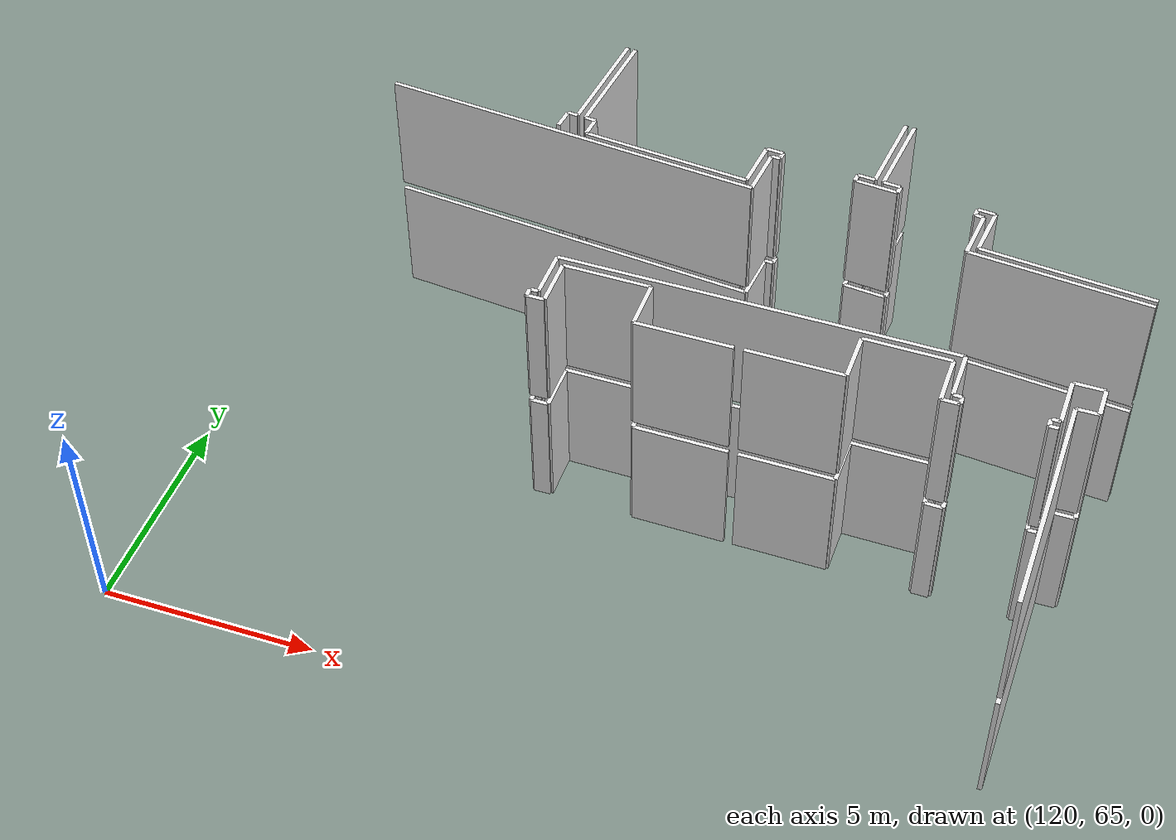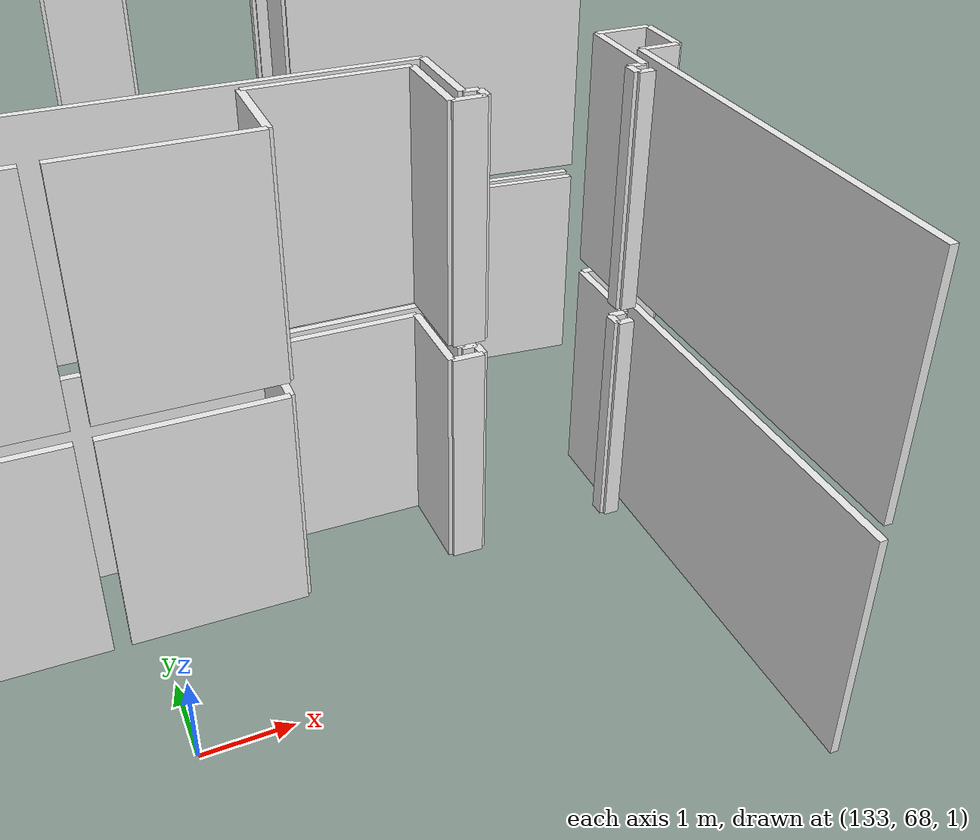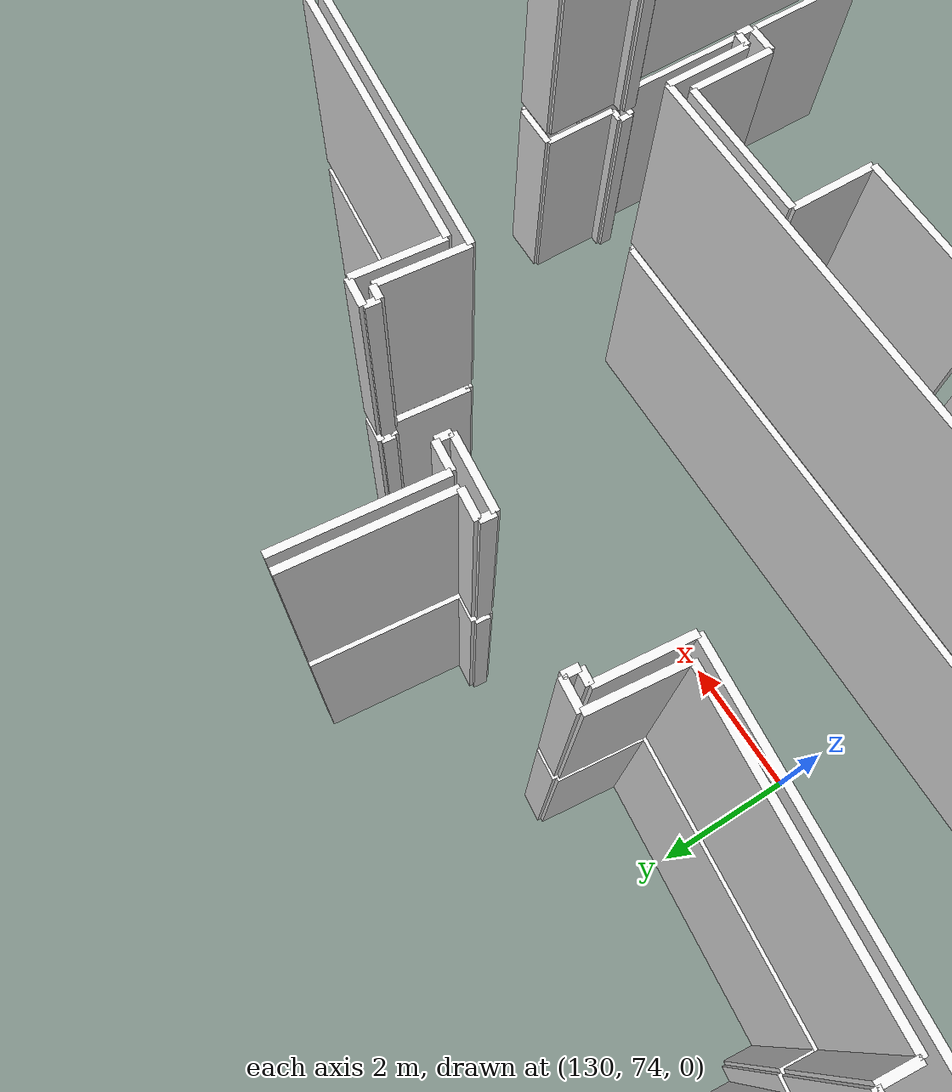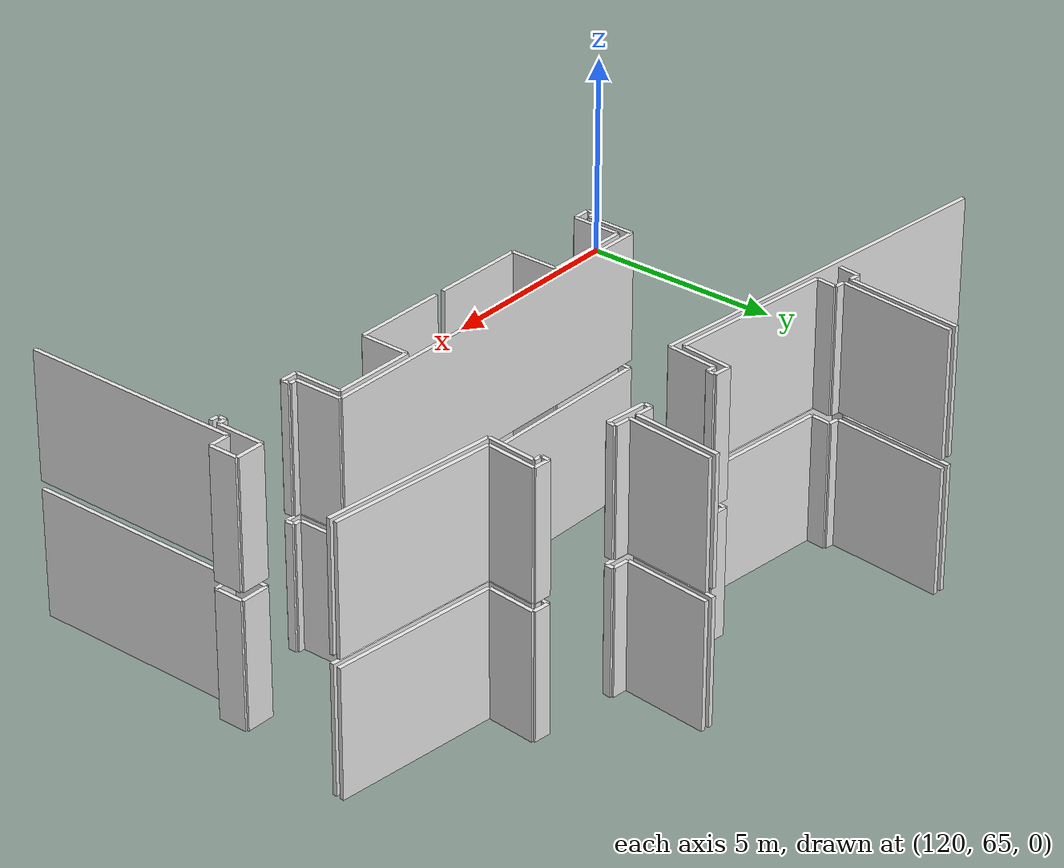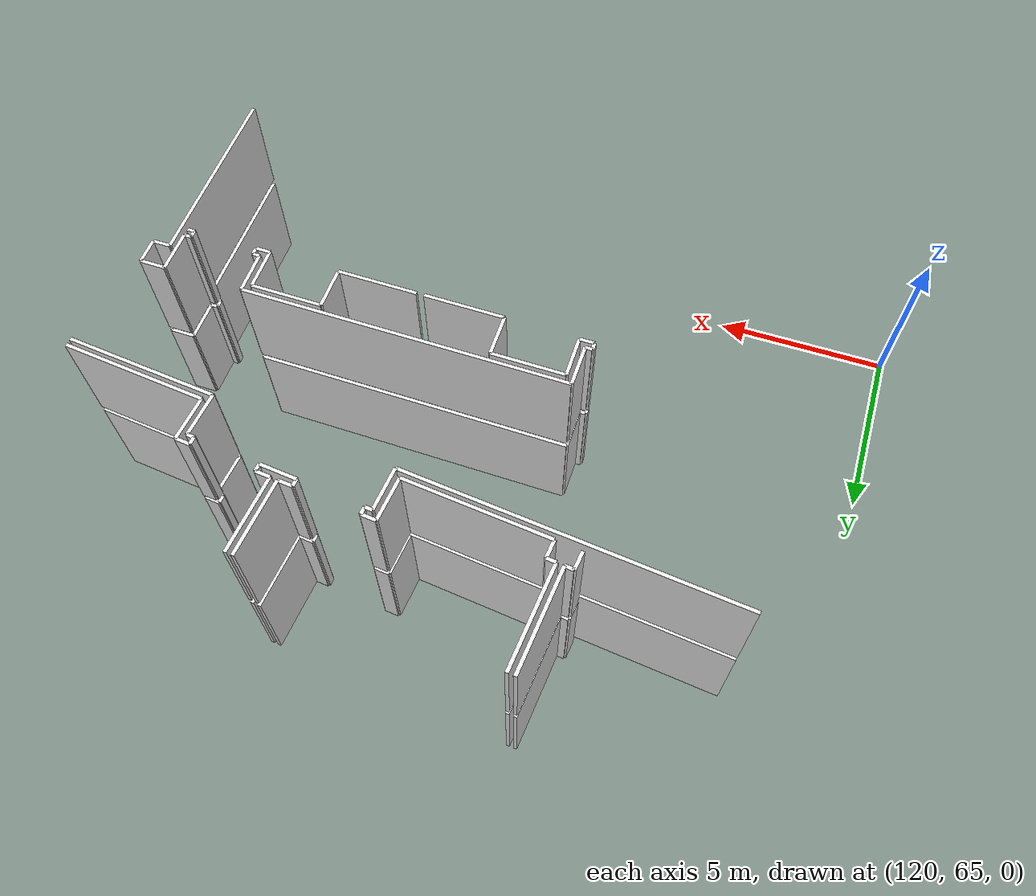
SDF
<sdf version="1.6">
 <world name="default">
  <model name="wall_134.4_76.9_0.0_link">
   <static>true</static>
   <pose>134.39999999999418 76.89999999990687 1.5 0 0 3.0419240009977764</pose>
   <link name="link">
    <visual name="visual">
     <geometry><box><size>0.4019950248137912 0.1 3</size></box></geometry>
     <material>
      <script><uri>file://media/materials/scripts/gazebo.material</uri><name>Gazebo/White</name></script>
     </material>
    </visual>
   </link>
  </model>
  <model name="wall_134.3_78.0_0.0_link">
   <static>true</static>
   <pose>134.30499999999302 77.95999999996275 1.5 0 0 1.4701757469590804</pose>
   <link name="link">
    <visual name="visual">
     <geometry><box><size>2.090574083904777 0.1 3</size></box></geometry>
     <material>
      <script><uri>file://media/materials/scripts/gazebo.material</uri><name>Gazebo/White</name></script>
     </material>
    </visual>
   </link>
  </model>
  <model name="wall_138.6_75.3_0.0_link">
   <static>true</static>
   <pose>138.63999999998487 75.26000000000931 1.5 0 0 3.0404164645756886</pose>
   <link name="link">
    <visual name="visual">
     <geometry><box><size>3.9602525171943066 0.1 3</size></box></geometry>
     <material>
      <script><uri>file://media/materials/scripts/gazebo.material</uri><name>Gazebo/White</name></script>
     </material>
    </visual>
   </link>
  </model>
  <model name="wall_136.7_76.1_0.0_link">
   <static>true</static>
   <pose>136.72999999998137 76.06000000005588 1.5 0 0 1.4711276743229451</pose>
   <link name="link">
    <visual name="visual">
     <geometry><box><size>1.2059850747193837 0.1 3</size></box></geometry>
     <material>
      <script><uri>file://media/materials/scripts/gazebo.material</uri><name>Gazebo/White</name></script>
     </material>
    </visual>
   </link>
  </model>
  <model name="wall_136.6_76.7_0.0_link">
   <static>true</static>
   <pose>136.5899999999965 76.68000000016764 1.5 0 0 3.0419240009977764</pose>
   <link name="link">
    <visual name="visual">
     <geometry><box><size>0.4019950248137912 0.1 3</size></box></geometry>
     <material>
      <script><uri>file://media/materials/scripts/gazebo.material</uri><name>Gazebo/White</name></script>
     </material>
    </visual>
   </link>
  </model>
  <model name="wall_133.8_77.0_0.0_link">
   <static>true</static>
   <pose>133.79999999998836 76.95999999996275 1.5 0 0 -0.09966865257760905</pose>
   <link name="link">
    <visual name="visual">
     <geometry><box><size>0.40199502487170996 0.1 3</size></box></geometry>
     <material>
      <script><uri>file://media/materials/scripts/gazebo.material</uri><name>Gazebo/White</name></script>
     </material>
    </visual>
   </link>
  </model>
  <model name="wall_134.1_78.0_0.0_link">
   <static>true</static>
   <pose>134.10500000001048 77.97999999998137 1.5 0 0 1.4701757469313783</pose>
   <link name="link">
    <visual name="visual">
     <geometry><box><size>2.0905740839106244 0.1 3</size></box></geometry>
     <material>
      <script><uri>file://media/materials/scripts/gazebo.material</uri><name>Gazebo/White</name></script>
     </material>
    </visual>
   </link>
  </model>
  <model name="wall_127.3_78.3_0.0_link">
   <static>true</static>
   <pose>127.29000000000815 78.31000000005588 1.5 0 0 -1.6711772298577363</pose>
   <link name="link">
    <visual name="visual">
     <geometry><box><size>2.7940651390819315 0.1 3</size></box></geometry>
     <material>
      <script><uri>file://media/materials/scripts/gazebo.material</uri><name>Gazebo/White</name></script>
     </material>
    </visual>
   </link>
  </model>
  <model name="wall_127.3_76.9_0.0_link">
   <static>true</static>
   <pose>127.27500000002328 76.90500000002794 1.5 0 0 -0.11942892521040878</pose>
   <link name="link">
    <visual name="visual">
     <geometry><box><size>0.2517935662158716 0.1 3</size></box></geometry>
     <material>
      <script><uri>file://media/materials/scripts/gazebo.material</uri><name>Gazebo/White</name></script>
     </material>
    </visual>
   </link>
  </model>
  <model name="wall_127.4_76.6_0.0_link">
   <static>true</static>
   <pose>127.375 76.64500000001863 1.5 0 0 -1.6724851786059602</pose>
   <link name="link">
    <visual name="visual">
     <geometry><box><size>0.4925444144680799 0.1 3</size></box></geometry>
     <material>
      <script><uri>file://media/materials/scripts/gazebo.material</uri><name>Gazebo/White</name></script>
     </material>
    </visual>
   </link>
  </model>
  <model name="wall_129.3_76.2_0.0_link">
   <static>true</static>
   <pose>129.31500000000233 76.19999999995343 1.5 0 0 -0.10143187482049365</pose>
   <link name="link">
    <visual name="visual">
     <geometry><box><size>3.9503037858281362 0.1 3</size></box></geometry>
     <material>
      <script><uri>file://media/materials/scripts/gazebo.material</uri><name>Gazebo/White</name></script>
     </material>
    </visual>
   </link>
  </model>
  <model name="wall_131.3_76.6_0.0_link">
   <static>true</static>
   <pose>131.34500000000116 76.60000000009313 1.5 0 0 1.4628838380389488</pose>
   <link name="link">
    <visual name="visual">
     <geometry><box><size>1.2070211267550837 0.1 3</size></box></geometry>
     <material>
      <script><uri>file://media/materials/scripts/gazebo.material</uri><name>Gazebo/White</name></script>
     </material>
    </visual>
   </link>
  </model>
  <model name="wall_131.6_77.2_0.0_link">
   <static>true</static>
   <pose>131.60999999998603 77.18000000016764 1.5 0 0 -0.09966865257760905</pose>
   <link name="link">
    <visual name="visual">
     <geometry><box><size>0.40199502487170996 0.1 3</size></box></geometry>
     <material>
      <script><uri>file://media/materials/scripts/gazebo.material</uri><name>Gazebo/White</name></script>
     </material>
    </visual>
   </link>
  </model>
  <model name="wall_126.7_76.7_0.0_link">
   <static>true</static>
   <pose>126.68000000002212 76.72000000020489 1.5 0 0 1.4513674007811488</pose>
   <link name="link">
    <visual name="visual">
     <geometry><box><size>0.5035871324802894 0.1 3</size></box></geometry>
     <material>
      <script><uri>file://media/materials/scripts/gazebo.material</uri><name>Gazebo/White</name></script>
     </material>
    </visual>
   </link>
  </model>
  <model name="wall_126.8_77.0_0.0_link">
   <static>true</static>
   <pose>126.8300000000163 76.9550000000745 1.5 0 0 -0.1243549956213644</pose>
   <link name="link">
    <visual name="visual">
     <geometry><box><size>0.24186773247205975 0.1 3</size></box></geometry>
     <material>
      <script><uri>file://media/materials/scripts/gazebo.material</uri><name>Gazebo/White</name></script>
     </material>
    </visual>
   </link>
  </model>
  <model name="wall_127.1_78.3_0.0_link">
   <static>true</static>
   <pose>127.08999999999651 78.3300000000745 1.5 0 0 1.470415423732057</pose>
   <link name="link">
    <visual name="visual">
     <geometry><box><size>2.7940651390819315 0.1 3</size></box></geometry>
     <material>
      <script><uri>file://media/materials/scripts/gazebo.material</uri><name>Gazebo/White</name></script>
     </material>
    </visual>
   </link>
  </model>
  <model name="wall_138.5_75.1_0.0_link">
   <static>true</static>
   <pose>138.52000000001863 75.07499999995343 1.5 0 0 3.0428807098041264</pose>
   <link name="link">
    <visual name="visual">
     <geometry><box><size>4.1602523961721385 0.1 3</size></box></geometry>
     <material>
      <script><uri>file://media/materials/scripts/gazebo.material</uri><name>Gazebo/White</name></script>
     </material>
    </visual>
   </link>
  </model>
  <model name="wall_136.5_75.9_0.0_link">
   <static>true</static>
   <pose>136.5100000000093 75.87999999988824 1.5 0 0 1.4711276743229451</pose>
   <link name="link">
    <visual name="visual">
     <geometry><box><size>1.2059850747193837 0.1 3</size></box></geometry>
     <material>
      <script><uri>file://media/materials/scripts/gazebo.material</uri><name>Gazebo/White</name></script>
     </material>
    </visual>
   </link>
  </model>
  <model name="wall_136.5_76.5_0.0_link">
   <static>true</static>
   <pose>136.47000000000116 76.48999999999069 1.5 0 0 3.0419240010121844</pose>
   <link name="link">
    <visual name="visual">
     <geometry><box><size>0.20099751243585498 0.1 3</size></box></geometry>
     <material>
      <script><uri>file://media/materials/scripts/gazebo.material</uri><name>Gazebo/White</name></script>
     </material>
    </visual>
   </link>
  </model>
  <model name="wall_136.4_76.6_0.0_link">
   <static>true</static>
   <pose>136.38000000000466 76.60000000009313 1.5 0 0 1.4711276743037347</pose>
   <link name="link">
    <visual name="visual">
     <geometry><box><size>0.20099751260961132 0.1 3</size></box></geometry>
     <material>
      <script><uri>file://media/materials/scripts/gazebo.material</uri><name>Gazebo/White</name></script>
     </material>
    </visual>
   </link>
  </model>
  <model name="wall_134.6_76.8_0.0_link">
   <static>true</static>
   <pose>134.5899999999965 76.78000000002794 1.5 0 0 -1.6704649792284274</pose>
   <link name="link">
    <visual name="visual">
     <geometry><box><size>0.20099751214046915 0.1 3</size></box></geometry>
     <material>
      <script><uri>file://media/materials/scripts/gazebo.material</uri><name>Gazebo/White</name></script>
     </material>
    </visual>
   </link>
  </model>
  <model name="wall_134.1_76.7_0.0_link">
   <static>true</static>
   <pose>134.0800000000163 76.72999999998137 1.5 0 0 3.0419240014674718</pose>
   <link name="link">
    <visual name="visual">
     <geometry><box><size>1.004987562075021 0.1 3</size></box></geometry>
     <material>
      <script><uri>file://media/materials/scripts/gazebo.material</uri><name>Gazebo/White</name></script>
     </material>
    </visual>
   </link>
  </model>
  <model name="wall_133.6_76.9_0.0_link">
   <static>true</static>
   <pose>133.5899999999965 76.87999999988824 1.5 0 0 1.4711276745918913</pose>
   <link name="link">
    <visual name="visual">
     <geometry><box><size>0.20099751260381943 0.1 3</size></box></geometry>
     <material>
      <script><uri>file://media/materials/scripts/gazebo.material</uri><name>Gazebo/White</name></script>
     </material>
    </visual>
   </link>
  </model>
  <model name="wall_131.8_77.1_0.0_link">
   <static>true</static>
   <pose>131.79999999998836 77.06000000005588 1.5 0 0 -1.6704649792860586</pose>
   <link name="link">
    <visual name="visual">
     <geometry><box><size>0.20099751260961132 0.1 3</size></box></geometry>
     <material>
      <script><uri>file://media/materials/scripts/gazebo.material</uri><name>Gazebo/White</name></script>
     </material>
    </visual>
   </link>
  </model>
  <model name="wall_131.7_77.0_0.0_link">
   <static>true</static>
   <pose>131.69000000000233 76.96999999997206 1.5 0 0 3.0419240009833683</pose>
   <link name="link">
    <visual name="visual">
     <geometry><box><size>0.20099751237793617 0.1 3</size></box></geometry>
     <material>
      <script><uri>file://media/materials/scripts/gazebo.material</uri><name>Gazebo/White</name></script>
     </material>
    </visual>
   </link>
  </model>
  <model name="wall_131.5_76.4_0.0_link">
   <static>true</static>
   <pose>131.52999999999884 76.38500000000931 1.5 0 0 -1.6712969258987618</pose>
   <link name="link">
    <visual name="visual">
     <geometry><box><size>1.1960351164910918 0.1 3</size></box></geometry>
     <material>
      <script><uri>file://media/materials/scripts/gazebo.material</uri><name>Gazebo/White</name></script>
     </material>
    </visual>
   </link>
  </model>
  <model name="wall_127.0_76.2_0.0_link">
   <static>true</static>
   <pose>126.98499999998603 76.23999999999069 1.5 0 0 3.0415928752928885</pose>
   <link name="link">
    <visual name="visual">
     <geometry><box><size>9.01503743748916 0.1 3</size></box></geometry>
     <material>
      <script><uri>file://media/materials/scripts/gazebo.material</uri><name>Gazebo/White</name></script>
     </material>
    </visual>
   </link>
  </model>
  <model name="wall_128.0_71.0_0.0_link">
   <static>true</static>
   <pose>127.95000000001164 71.04000000003725 1.5 0 0 1.5707963267948966</pose>
   <link name="link">
    <visual name="visual">
     <geometry><box><size>0.20000000018626451 0.1 3</size></box></geometry>
     <material>
      <script><uri>file://media/materials/scripts/gazebo.material</uri><name>Gazebo/White</name></script>
     </material>
    </visual>
   </link>
  </model>
  <model name="wall_128.0_71.1_0.0_link">
   <static>true</static>
   <pose>128.0450000000128 71.13500000000931 1.5 0 0 -0.0525830628812194</pose>
   <link name="link">
    <visual name="visual">
     <geometry><box><size>0.19026297591945637 0.1 3</size></box></geometry>
     <material>
      <script><uri>file://media/materials/scripts/gazebo.material</uri><name>Gazebo/White</name></script>
     </material>
    </visual>
   </link>
  </model>
  <model name="wall_128.1_71.7_0.0_link">
   <static>true</static>
   <pose>128.14999999999418 71.69999999995343 1.5 0 0 1.5532542667742097</pose>
   <link name="link">
    <visual name="visual">
     <geometry><box><size>1.1401754252288088 0.1 3</size></box></geometry>
     <material>
      <script><uri>file://media/materials/scripts/gazebo.material</uri><name>Gazebo/White</name></script>
     </material>
    </visual>
   </link>
  </model>
  <model name="wall_132.6_72.2_0.0_link">
   <static>true</static>
   <pose>132.64499999998952 72.2050000000745 1.5 0 0 -0.014491739052994581</pose>
   <link name="link">
    <visual name="visual">
     <geometry><box><size>8.970941979553427 0.1 3</size></box></geometry>
     <material>
      <script><uri>file://media/materials/scripts/gazebo.material</uri><name>Gazebo/White</name></script>
     </material>
    </visual>
   </link>
  </model>
  <model name="wall_137.1_71.6_0.0_link">
   <static>true</static>
   <pose>137.125 71.57000000006519 1.5 0 0 -1.579568031646505</pose>
   <link name="link">
    <visual name="visual">
     <geometry><box><size>1.1400438589359028 0.1 3</size></box></geometry>
     <material>
      <script><uri>file://media/materials/scripts/gazebo.material</uri><name>Gazebo/White</name></script>
     </material>
    </visual>
   </link>
  </model>
  <model name="wall_137.2_71.0_0.0_link">
   <static>true</static>
   <pose>137.2149999999965 70.99500000011176 1.5 0 0 -0.052583060437140824</pose>
   <link name="link">
    <visual name="visual">
     <geometry><box><size>0.19026297589498176 0.1 3</size></box></geometry>
     <material>
      <script><uri>file://media/materials/scripts/gazebo.material</uri><name>Gazebo/White</name></script>
     </material>
    </visual>
   </link>
  </model>
  <model name="wall_137.3_70.9_0.0_link">
   <static>true</static>
   <pose>137.30999999999767 70.89000000013039 1.5 0 0 -1.5707963267948966</pose>
   <link name="link">
    <visual name="visual">
     <geometry><box><size>0.20000000018626451 0.1 3</size></box></geometry>
     <material>
      <script><uri>file://media/materials/scripts/gazebo.material</uri><name>Gazebo/White</name></script>
     </material>
    </visual>
   </link>
  </model>
  <model name="wall_139.1_70.9_0.0_link">
   <static>true</static>
   <pose>139.11999999999534 70.87000000011176 1.5 0 0 1.5707963267948966</pose>
   <link name="link">
    <visual name="visual">
     <geometry><box><size>0.20000000018626451 0.1 3</size></box></geometry>
     <material>
      <script><uri>file://media/materials/scripts/gazebo.material</uri><name>Gazebo/White</name></script>
     </material>
    </visual>
   </link>
  </model>
  <model name="wall_139.2_71.0_0.0_link">
   <static>true</static>
   <pose>139.22000000000116 70.97000000020489 1.5 0 0 0.0</pose>
   <link name="link">
    <visual name="visual">
     <geometry><box><size>0.20000000001164153 0.1 3</size></box></geometry>
     <material>
      <script><uri>file://media/materials/scripts/gazebo.material</uri><name>Gazebo/White</name></script>
     </material>
    </visual>
   </link>
  </model>
  <model name="wall_139.3_71.5_0.0_link">
   <static>true</static>
   <pose>139.3300000000163 71.54000000003725 1.5 0 0 1.553254266716002</pose>
   <link name="link">
    <visual name="visual">
     <geometry><box><size>1.1401754247642402 0.1 3</size></box></geometry>
     <material>
      <script><uri>file://media/materials/scripts/gazebo.material</uri><name>Gazebo/White</name></script>
     </material>
    </visual>
   </link>
  </model>
  <model name="wall_139.7_72.1_0.0_link">
   <static>true</static>
   <pose>139.68500000002678 72.10499999998137 1.5 0 0 -0.014491738741580868</pose>
   <link name="link">
    <visual name="visual">
     <geometry><box><size>0.6900724599625337 0.1 3</size></box></geometry>
     <material>
      <script><uri>file://media/materials/scripts/gazebo.material</uri><name>Gazebo/White</name></script>
     </material>
    </visual>
   </link>
  </model>
  <model name="wall_140.0_71.8_0.0_link">
   <static>true</static>
   <pose>140.02500000002328 71.75500000012107 1.5 0 0 -1.5852880658750648</pose>
   <link name="link">
    <visual name="visual">
     <geometry><box><size>0.6900724599077062 0.1 3</size></box></geometry>
     <material>
      <script><uri>file://media/materials/scripts/gazebo.material</uri><name>Gazebo/White</name></script>
     </material>
    </visual>
   </link>
  </model>
  <model name="wall_139.8_71.4_0.0_link">
   <static>true</static>
   <pose>139.77500000002328 71.41000000014901 1.5 0 0 3.141592653589793</pose>
   <link name="link">
    <visual name="visual">
     <geometry><box><size>0.4899999999906868 0.1 3</size></box></geometry>
     <material>
      <script><uri>file://media/materials/scripts/gazebo.material</uri><name>Gazebo/White</name></script>
     </material>
    </visual>
   </link>
  </model>
  <model name="wall_139.5_68.8_0.0_link">
   <static>true</static>
   <pose>139.49500000002445 68.80000000004657 1.5 0 0 -1.5842054847435334</pose>
   <link name="link">
    <visual name="visual">
     <geometry><box><size>5.220469327765468 0.1 3</size></box></geometry>
     <material>
      <script><uri>file://media/materials/scripts/gazebo.material</uri><name>Gazebo/White</name></script>
     </material>
    </visual>
   </link>
  </model>
  <model name="wall_131.4_70.9_0.0_link">
   <static>true</static>
   <pose>131.44999999998254 70.875 1.5 0 0 3.127957134969853</pose>
   <link name="link">
    <visual name="visual">
     <geometry><box><size>2.2002045359617974 0.1 3</size></box></geometry>
     <material>
      <script><uri>file://media/materials/scripts/gazebo.material</uri><name>Gazebo/White</name></script>
     </material>
    </visual>
   </link>
  </model>
  <model name="wall_130.4_71.5_0.0_link">
   <static>true</static>
   <pose>130.35499999998137 71.45999999996275 1.5 0 0 1.5620246219397054</pose>
   <link name="link">
    <visual name="visual">
     <geometry><box><size>1.1400438584702595 0.1 3</size></box></geometry>
     <material>
      <script><uri>file://media/materials/scripts/gazebo.material</uri><name>Gazebo/White</name></script>
     </material>
    </visual>
   </link>
  </model>
  <model name="wall_129.4_72.0_0.0_link">
   <static>true</static>
   <pose>129.35999999998603 72.0449999999255 1.5 0 0 3.126593778307587</pose>
   <link name="link">
    <visual name="visual">
     <geometry><box><size>2.0002249873490845 0.1 3</size></box></geometry>
     <material>
      <script><uri>file://media/materials/scripts/gazebo.material</uri><name>Gazebo/White</name></script>
     </material>
    </visual>
   </link>
  </model>
  <model name="wall_128.4_71.5_0.0_link">
   <static>true</static>
   <pose>128.35499999998137 71.5 1.5 0 0 -1.5797246609821571</pose>
   <link name="link">
    <visual name="visual">
     <geometry><box><size>1.1200446420792904 0.1 3</size></box></geometry>
     <material>
      <script><uri>file://media/materials/scripts/gazebo.material</uri><name>Gazebo/White</name></script>
     </material>
    </visual>
   </link>
  </model>
  <model name="wall_128.1_70.9_0.0_link">
   <static>true</static>
   <pose>128.14999999999418 70.93999999994412 1.5 0 0 3.141592653589793</pose>
   <link name="link">
    <visual name="visual">
     <geometry><box><size>0.3999999999650754 0.1 3</size></box></geometry>
     <material>
      <script><uri>file://media/materials/scripts/gazebo.material</uri><name>Gazebo/White</name></script>
     </material>
    </visual>
   </link>
  </model>
  <model name="wall_133.9_70.8_0.0_link">
   <static>true</static>
   <pose>133.85500000001048 70.84499999997206 1.5 0 0 -0.013697773279311262</pose>
   <link name="link">
    <visual name="visual">
     <geometry><box><size>2.190205469812799 0.1 3</size></box></geometry>
     <material>
      <script><uri>file://media/materials/scripts/gazebo.material</uri><name>Gazebo/White</name></script>
     </material>
    </visual>
   </link>
  </model>
  <model name="wall_135.0_71.4_0.0_link">
   <static>true</static>
   <pose>134.95999999999185 71.4000000001397 1.5 0 0 1.5532542667742097</pose>
   <link name="link">
    <visual name="visual">
     <geometry><box><size>1.1401754252288088 0.1 3</size></box></geometry>
     <material>
      <script><uri>file://media/materials/scripts/gazebo.material</uri><name>Gazebo/White</name></script>
     </material>
    </visual>
   </link>
  </model>
  <model name="wall_135.9_72.0_0.0_link">
   <static>true</static>
   <pose>135.94499999997788 71.9550000000745 1.5 0 0 -0.015383401914200052</pose>
   <link name="link">
    <visual name="visual">
     <geometry><box><size>1.9502307555930525 0.1 3</size></box></geometry>
     <material>
      <script><uri>file://media/materials/scripts/gazebo.material</uri><name>Gazebo/White</name></script>
     </material>
    </visual>
   </link>
  </model>
  <model name="wall_136.9_71.4_0.0_link">
   <static>true</static>
   <pose>136.91499999997905 71.36999999987893 1.5 0 0 -1.579568031646505</pose>
   <link name="link">
    <visual name="visual">
     <geometry><box><size>1.1400438589359028 0.1 3</size></box></geometry>
     <material>
      <script><uri>file://media/materials/scripts/gazebo.material</uri><name>Gazebo/White</name></script>
     </material>
    </visual>
   </link>
  </model>
  <model name="wall_137.1_70.8_0.0_link">
   <static>true</static>
   <pose>137.10999999998603 70.7949999999255 1.5 0 0 -0.02499479305902136</pose>
   <link name="link">
    <visual name="visual">
     <geometry><box><size>0.40012498049254075 0.1 3</size></box></geometry>
     <material>
      <script><uri>file://media/materials/scripts/gazebo.material</uri><name>Gazebo/White</name></script>
     </material>
    </visual>
   </link>
  </model>
  <model name="wall_139.2_70.8_0.0_link">
   <static>true</static>
   <pose>139.22000000000116 70.77000000001863 1.5 0 0 0.0</pose>
   <link name="link">
    <visual name="visual">
     <geometry><box><size>0.20000000001164153 0.1 3</size></box></geometry>
     <material>
      <script><uri>file://media/materials/scripts/gazebo.material</uri><name>Gazebo/White</name></script>
     </material>
    </visual>
   </link>
  </model>
  <model name="wall_134.4_76.9_3.2_link">
   <static>true</static>
   <pose>134.39999999999418 76.89999999990687 4.7 0 0 3.0419240009977764</pose>
   <link name="link">
    <visual name="visual">
     <geometry><box><size>0.4019950248137912 0.1 3</size></box></geometry>
     <material>
      <script><uri>file://media/materials/scripts/gazebo.material</uri><name>Gazebo/White</name></script>
     </material>
    </visual>
   </link>
  </model>
  <model name="wall_134.3_78.0_3.2_link">
   <static>true</static>
   <pose>134.30499999999302 77.95999999996275 4.7 0 0 1.4701757469590804</pose>
   <link name="link">
    <visual name="visual">
     <geometry><box><size>2.090574083904777 0.1 3</size></box></geometry>
     <material>
      <script><uri>file://media/materials/scripts/gazebo.material</uri><name>Gazebo/White</name></script>
     </material>
    </visual>
   </link>
  </model>
  <model name="wall_138.6_75.3_3.2_link">
   <static>true</static>
   <pose>138.63999999998487 75.26000000000931 4.7 0 0 3.0404164645756886</pose>
   <link name="link">
    <visual name="visual">
     <geometry><box><size>3.9602525171943066 0.1 3</size></box></geometry>
     <material>
      <script><uri>file://media/materials/scripts/gazebo.material</uri><name>Gazebo/White</name></script>
     </material>
    </visual>
   </link>
  </model>
  <model name="wall_136.7_76.1_3.2_link">
   <static>true</static>
   <pose>136.72999999998137 76.06000000005588 4.7 0 0 1.4711276743229451</pose>
   <link name="link">
    <visual name="visual">
     <geometry><box><size>1.2059850747193837 0.1 3</size></box></geometry>
     <material>
      <script><uri>file://media/materials/scripts/gazebo.material</uri><name>Gazebo/White</name></script>
     </material>
    </visual>
   </link>
  </model>
  <model name="wall_136.6_76.7_3.2_link">
   <static>true</static>
   <pose>136.5899999999965 76.68000000016764 4.7 0 0 3.0419240009977764</pose>
   <link name="link">
    <visual name="visual">
     <geometry><box><size>0.4019950248137912 0.1 3</size></box></geometry>
     <material>
      <script><uri>file://media/materials/scripts/gazebo.material</uri><name>Gazebo/White</name></script>
     </material>
    </visual>
   </link>
  </model>
  <model name="wall_133.8_77.0_3.2_link">
   <static>true</static>
   <pose>133.79999999998836 76.95999999996275 4.7 0 0 -0.09966865257760905</pose>
   <link name="link">
    <visual name="visual">
     <geometry><box><size>0.40199502487170996 0.1 3</size></box></geometry>
     <material>
      <script><uri>file://media/materials/scripts/gazebo.material</uri><name>Gazebo/White</name></script>
     </material>
    </visual>
   </link>
  </model>
  <model name="wall_134.1_78.0_3.2_link">
   <static>true</static>
   <pose>134.10500000001048 77.97999999998137 4.7 0 0 1.4701757469313783</pose>
   <link name="link">
    <visual name="visual">
     <geometry><box><size>2.0905740839106244 0.1 3</size></box></geometry>
     <material>
      <script><uri>file://media/materials/scripts/gazebo.material</uri><name>Gazebo/White</name></script>
     </material>
    </visual>
   </link>
  </model>
  <model name="wall_127.3_78.3_3.2_link">
   <static>true</static>
   <pose>127.29000000000815 78.31000000005588 4.7 0 0 -1.6711772298577363</pose>
   <link name="link">
    <visual name="visual">
     <geometry><box><size>2.7940651390819315 0.1 3</size></box></geometry>
     <material>
      <script><uri>file://media/materials/scripts/gazebo.material</uri><name>Gazebo/White</name></script>
     </material>
    </visual>
   </link>
  </model>
  <model name="wall_127.3_76.9_3.2_link">
   <static>true</static>
   <pose>127.27500000002328 76.90500000002794 4.7 0 0 -0.11942892521040878</pose>
   <link name="link">
    <visual name="visual">
     <geometry><box><size>0.2517935662158716 0.1 3</size></box></geometry>
     <material>
      <script><uri>file://media/materials/scripts/gazebo.material</uri><name>Gazebo/White</name></script>
     </material>
    </visual>
   </link>
  </model>
  <model name="wall_127.4_76.6_3.2_link">
   <static>true</static>
   <pose>127.375 76.64500000001863 4.7 0 0 -1.6724851786059602</pose>
   <link name="link">
    <visual name="visual">
     <geometry><box><size>0.4925444144680799 0.1 3</size></box></geometry>
     <material>
      <script><uri>file://media/materials/scripts/gazebo.material</uri><name>Gazebo/White</name></script>
     </material>
    </visual>
   </link>
  </model>
  <model name="wall_129.3_76.2_3.2_link">
   <static>true</static>
   <pose>129.31500000000233 76.19999999995343 4.7 0 0 -0.10143187482049365</pose>
   <link name="link">
    <visual name="visual">
     <geometry><box><size>3.9503037858281362 0.1 3</size></box></geometry>
     <material>
      <script><uri>file://media/materials/scripts/gazebo.material</uri><name>Gazebo/White</name></script>
     </material>
    </visual>
   </link>
  </model>
  <model name="wall_131.3_76.6_3.2_link">
   <static>true</static>
   <pose>131.34500000000116 76.60000000009313 4.7 0 0 1.4628838380389488</pose>
   <link name="link">
    <visual name="visual">
     <geometry><box><size>1.2070211267550837 0.1 3</size></box></geometry>
     <material>
      <script><uri>file://media/materials/scripts/gazebo.material</uri><name>Gazebo/White</name></script>
     </material>
    </visual>
   </link>
  </model>
  <model name="wall_131.6_77.2_3.2_link">
   <static>true</static>
   <pose>131.60999999998603 77.18000000016764 4.7 0 0 -0.09966865257760905</pose>
   <link name="link">
    <visual name="visual">
     <geometry><box><size>0.40199502487170996 0.1 3</size></box></geometry>
     <material>
      <script><uri>file://media/materials/scripts/gazebo.material</uri><name>Gazebo/White</name></script>
     </material>
    </visual>
   </link>
  </model>
  <model name="wall_126.7_76.7_3.2_link">
   <static>true</static>
   <pose>126.68000000002212 76.72000000020489 4.7 0 0 1.4513674007811488</pose>
   <link name="link">
    <visual name="visual">
     <geometry><box><size>0.5035871324802894 0.1 3</size></box></geometry>
     <material>
      <script><uri>file://media/materials/scripts/gazebo.material</uri><name>Gazebo/White</name></script>
     </material>
    </visual>
   </link>
  </model>
  <model name="wall_126.8_77.0_3.2_link">
   <static>true</static>
   <pose>126.8300000000163 76.9550000000745 4.7 0 0 -0.1243549956213644</pose>
   <link name="link">
    <visual name="visual">
     <geometry><box><size>0.24186773247205975 0.1 3</size></box></geometry>
     <material>
      <script><uri>file://media/materials/scripts/gazebo.material</uri><name>Gazebo/White</name></script>
     </material>
    </visual>
   </link>
  </model>
  <model name="wall_127.1_78.3_3.2_link">
   <static>true</static>
   <pose>127.08999999999651 78.3300000000745 4.7 0 0 1.470415423732057</pose>
   <link name="link">
    <visual name="visual">
     <geometry><box><size>2.7940651390819315 0.1 3</size></box></geometry>
     <material>
      <script><uri>file://media/materials/scripts/gazebo.material</uri><name>Gazebo/White</name></script>
     </material>
    </visual>
   </link>
  </model>
  <model name="wall_138.5_75.1_3.2_link">
   <static>true</static>
   <pose>138.52000000001863 75.07499999995343 4.7 0 0 3.0428807098041264</pose>
   <link name="link">
    <visual name="visual">
     <geometry><box><size>4.1602523961721385 0.1 3</size></box></geometry>
     <material>
      <script><uri>file://media/materials/scripts/gazebo.material</uri><name>Gazebo/White</name></script>
     </material>
    </visual>
   </link>
  </model>
  <model name="wall_136.5_75.9_3.2_link">
   <static>true</static>
   <pose>136.5100000000093 75.87999999988824 4.7 0 0 1.4711276743229451</pose>
   <link name="link">
    <visual name="visual">
     <geometry><box><size>1.2059850747193837 0.1 3</size></box></geometry>
     <material>
      <script><uri>file://media/materials/scripts/gazebo.material</uri><name>Gazebo/White</name></script>
     </material>
    </visual>
   </link>
  </model>
  <model name="wall_136.5_76.5_3.2_link">
   <static>true</static>
   <pose>136.47000000000116 76.48999999999069 4.7 0 0 3.0419240010121844</pose>
   <link name="link">
    <visual name="visual">
     <geometry><box><size>0.20099751243585498 0.1 3</size></box></geometry>
     <material>
      <script><uri>file://media/materials/scripts/gazebo.material</uri><name>Gazebo/White</name></script>
     </material>
    </visual>
   </link>
  </model>
  <model name="wall_136.4_76.6_3.2_link">
   <static>true</static>
   <pose>136.38000000000466 76.60000000009313 4.7 0 0 1.4711276743037347</pose>
   <link name="link">
    <visual name="visual">
     <geometry><box><size>0.20099751260961132 0.1 3</size></box></geometry>
     <material>
      <script><uri>file://media/materials/scripts/gazebo.material</uri><name>Gazebo/White</name></script>
     </material>
    </visual>
   </link>
  </model>
  <model name="wall_134.6_76.8_3.2_link">
   <static>true</static>
   <pose>134.5899999999965 76.78000000002794 4.7 0 0 -1.6704649792284274</pose>
   <link name="link">
    <visual name="visual">
     <geometry><box><size>0.20099751214046915 0.1 3</size></box></geometry>
     <material>
      <script><uri>file://media/materials/scripts/gazebo.material</uri><name>Gazebo/White</name></script>
     </material>
    </visual>
   </link>
  </model>
  <model name="wall_134.1_76.7_3.2_link">
   <static>true</static>
   <pose>134.0800000000163 76.72999999998137 4.7 0 0 3.0419240014674718</pose>
   <link name="link">
    <visual name="visual">
     <geometry><box><size>1.004987562075021 0.1 3</size></box></geometry>
     <material>
      <script><uri>file://media/materials/scripts/gazebo.material</uri><name>Gazebo/White</name></script>
     </material>
    </visual>
   </link>
  </model>
  <model name="wall_133.6_76.9_3.2_link">
   <static>true</static>
   <pose>133.5899999999965 76.87999999988824 4.7 0 0 1.4711276745918913</pose>
   <link name="link">
    <visual name="visual">
     <geometry><box><size>0.20099751260381943 0.1 3</size></box></geometry>
     <material>
      <script><uri>file://media/materials/scripts/gazebo.material</uri><name>Gazebo/White</name></script>
     </material>
    </visual>
   </link>
  </model>
  <model name="wall_131.8_77.1_3.2_link">
   <static>true</static>
   <pose>131.79999999998836 77.06000000005588 4.7 0 0 -1.6704649792860586</pose>
   <link name="link">
    <visual name="visual">
     <geometry><box><size>0.20099751260961132 0.1 3</size></box></geometry>
     <material>
      <script><uri>file://media/materials/scripts/gazebo.material</uri><name>Gazebo/White</name></script>
     </material>
    </visual>
   </link>
  </model>
  <model name="wall_131.7_77.0_3.2_link">
   <static>true</static>
   <pose>131.69000000000233 76.96999999997206 4.7 0 0 3.0419240009833683</pose>
   <link name="link">
    <visual name="visual">
     <geometry><box><size>0.20099751237793617 0.1 3</size></box></geometry>
     <material>
      <script><uri>file://media/materials/scripts/gazebo.material</uri><name>Gazebo/White</name></script>
     </material>
    </visual>
   </link>
  </model>
  <model name="wall_131.5_76.4_3.2_link">
   <static>true</static>
   <pose>131.52999999999884 76.38500000000931 4.7 0 0 -1.6712969258987618</pose>
   <link name="link">
    <visual name="visual">
     <geometry><box><size>1.1960351164910918 0.1 3</size></box></geometry>
     <material>
      <script><uri>file://media/materials/scripts/gazebo.material</uri><name>Gazebo/White</name></script>
     </material>
    </visual>
   </link>
  </model>
  <model name="wall_127.0_76.2_3.2_link">
   <static>true</static>
   <pose>126.98499999998603 76.23999999999069 4.7 0 0 3.0415928752928885</pose>
   <link name="link">
    <visual name="visual">
     <geometry><box><size>9.01503743748916 0.1 3</size></box></geometry>
     <material>
      <script><uri>file://media/materials/scripts/gazebo.material</uri><name>Gazebo/White</name></script>
     </material>
    </visual>
   </link>
  </model>
  <model name="wall_128.0_71.0_3.2_link">
   <static>true</static>
   <pose>127.95000000001164 71.04000000003725 4.7 0 0 1.5707963267948966</pose>
   <link name="link">
    <visual name="visual">
     <geometry><box><size>0.20000000018626451 0.1 3</size></box></geometry>
     <material>
      <script><uri>file://media/materials/scripts/gazebo.material</uri><name>Gazebo/White</name></script>
     </material>
    </visual>
   </link>
  </model>
  <model name="wall_128.0_71.1_3.2_link">
   <static>true</static>
   <pose>128.0450000000128 71.13500000000931 4.7 0 0 -0.0525830628812194</pose>
   <link name="link">
    <visual name="visual">
     <geometry><box><size>0.19026297591945637 0.1 3</size></box></geometry>
     <material>
      <script><uri>file://media/materials/scripts/gazebo.material</uri><name>Gazebo/White</name></script>
     </material>
    </visual>
   </link>
  </model>
  <model name="wall_128.1_71.7_3.2_link">
   <static>true</static>
   <pose>128.14999999999418 71.69999999995343 4.7 0 0 1.5532542667742097</pose>
   <link name="link">
    <visual name="visual">
     <geometry><box><size>1.1401754252288088 0.1 3</size></box></geometry>
     <material>
      <script><uri>file://media/materials/scripts/gazebo.material</uri><name>Gazebo/White</name></script>
     </material>
    </visual>
   </link>
  </model>
  <model name="wall_132.6_72.2_3.2_link">
   <static>true</static>
   <pose>132.64499999998952 72.2050000000745 4.7 0 0 -0.014491739052994581</pose>
   <link name="link">
    <visual name="visual">
     <geometry><box><size>8.970941979553427 0.1 3</size></box></geometry>
     <material>
      <script><uri>file://media/materials/scripts/gazebo.material</uri><name>Gazebo/White</name></script>
     </material>
    </visual>
   </link>
  </model>
  <model name="wall_137.1_71.6_3.2_link">
   <static>true</static>
   <pose>137.125 71.57000000006519 4.7 0 0 -1.579568031646505</pose>
   <link name="link">
    <visual name="visual">
     <geometry><box><size>1.1400438589359028 0.1 3</size></box></geometry>
     <material>
      <script><uri>file://media/materials/scripts/gazebo.material</uri><name>Gazebo/White</name></script>
     </material>
    </visual>
   </link>
  </model>
  <model name="wall_137.2_71.0_3.2_link">
   <static>true</static>
   <pose>137.2149999999965 70.99500000011176 4.7 0 0 -0.052583060437140824</pose>
   <link name="link">
    <visual name="visual">
     <geometry><box><size>0.19026297589498176 0.1 3</size></box></geometry>
     <material>
      <script><uri>file://media/materials/scripts/gazebo.material</uri><name>Gazebo/White</name></script>
     </material>
    </visual>
   </link>
  </model>
  <model name="wall_137.3_70.9_3.2_link">
   <static>true</static>
   <pose>137.30999999999767 70.89000000013039 4.7 0 0 -1.5707963267948966</pose>
   <link name="link">
    <visual name="visual">
     <geometry><box><size>0.20000000018626451 0.1 3</size></box></geometry>
     <material>
      <script><uri>file://media/materials/scripts/gazebo.material</uri><name>Gazebo/White</name></script>
     </material>
    </visual>
   </link>
  </model>
  <model name="wall_139.1_70.9_3.2_link">
   <static>true</static>
   <pose>139.11999999999534 70.87000000011176 4.7 0 0 1.5707963267948966</pose>
   <link name="link">
    <visual name="visual">
     <geometry><box><size>0.20000000018626451 0.1 3</size></box></geometry>
     <material>
      <script><uri>file://media/materials/scripts/gazebo.material</uri><name>Gazebo/White</name></script>
     </material>
    </visual>
   </link>
  </model>
  <model name="wall_139.2_71.0_3.2_link">
   <static>true</static>
   <pose>139.22000000000116 70.97000000020489 4.7 0 0 0.0</pose>
   <link name="link">
    <visual name="visual">
     <geometry><box><size>0.20000000001164153 0.1 3</size></box></geometry>
     <material>
      <script><uri>file://media/materials/scripts/gazebo.material</uri><name>Gazebo/White</name></script>
     </material>
    </visual>
   </link>
  </model>
  <model name="wall_139.3_71.5_3.2_link">
   <static>true</static>
   <pose>139.3300000000163 71.54000000003725 4.7 0 0 1.553254266716002</pose>
   <link name="link">
    <visual name="visual">
     <geometry><box><size>1.1401754247642402 0.1 3</size></box></geometry>
     <material>
      <script><uri>file://media/materials/scripts/gazebo.material</uri><name>Gazebo/White</name></script>
     </material>
    </visual>
   </link>
  </model>
  <model name="wall_139.7_72.1_3.2_link">
   <static>true</static>
   <pose>139.68500000002678 72.10499999998137 4.7 0 0 -0.014491738741580868</pose>
   <link name="link">
    <visual name="visual">
     <geometry><box><size>0.6900724599625337 0.1 3</size></box></geometry>
     <material>
      <script><uri>file://media/materials/scripts/gazebo.material</uri><name>Gazebo/White</name></script>
     </material>
    </visual>
   </link>
  </model>
  <model name="wall_140.0_71.8_3.2_link">
   <static>true</static>
   <pose>140.02500000002328 71.75500000012107 4.7 0 0 -1.5852880658750648</pose>
   <link name="link">
    <visual name="visual">
     <geometry><box><size>0.6900724599077062 0.1 3</size></box></geometry>
     <material>
      <script><uri>file://media/materials/scripts/gazebo.material</uri><name>Gazebo/White</name></script>
     </material>
    </visual>
   </link>
  </model>
  <model name="wall_139.8_71.4_3.2_link">
   <static>true</static>
   <pose>139.77500000002328 71.41000000014901 4.7 0 0 3.141592653589793</pose>
   <link name="link">
    <visual name="visual">
     <geometry><box><size>0.4899999999906868 0.1 3</size></box></geometry>
     <material>
      <script><uri>file://media/materials/scripts/gazebo.material</uri><name>Gazebo/White</name></script>
     </material>
    </visual>
   </link>
  </model>
  <model name="wall_139.5_68.8_3.2_link">
   <static>true</static>
   <pose>139.49500000002445 68.80000000004657 4.7 0 0 -1.5842054847435334</pose>
   <link name="link">
    <visual name="visual">
     <geometry><box><size>5.220469327765468 0.1 3</size></box></geometry>
     <material>
      <script><uri>file://media/materials/scripts/gazebo.material</uri><name>Gazebo/White</name></script>
     </material>
    </visual>
   </link>
  </model>
  <model name="wall_131.4_70.9_3.2_link">
   <static>true</static>
   <pose>131.44999999998254 70.875 4.7 0 0 3.127957134969853</pose>
   <link name="link">
    <visual name="visual">
     <geometry><box><size>2.2002045359617974 0.1 3</size></box></geometry>
     <material>
      <script><uri>file://media/materials/scripts/gazebo.material</uri><name>Gazebo/White</name></script>
     </material>
    </visual>
   </link>
  </model>
  <model name="wall_130.4_71.5_3.2_link">
   <static>true</static>
   <pose>130.35499999998137 71.45999999996275 4.7 0 0 1.5620246219397054</pose>
   <link name="link">
    <visual name="visual">
     <geometry><box><size>1.1400438584702595 0.1 3</size></box></geometry>
     <material>
      <script><uri>file://media/materials/scripts/gazebo.material</uri><name>Gazebo/White</name></script>
     </material>
    </visual>
   </link>
  </model>
  <model name="wall_129.4_72.0_3.2_link">
   <static>true</static>
   <pose>129.35999999998603 72.0449999999255 4.7 0 0 3.126593778307587</pose>
   <link name="link">
    <visual name="visual">
     <geometry><box><size>2.0002249873490845 0.1 3</size></box></geometry>
     <material>
      <script><uri>file://media/materials/scripts/gazebo.material</uri><name>Gazebo/White</name></script>
     </material>
    </visual>
   </link>
  </model>
  <model name="wall_128.4_71.5_3.2_link">
   <static>true</static>
   <pose>128.35499999998137 71.5 4.7 0 0 -1.5797246609821571</pose>
   <link name="link">
    <visual name="visual">
     <geometry><box><size>1.1200446420792904 0.1 3</size></box></geometry>
     <material>
      <script><uri>file://media/materials/scripts/gazebo.material</uri><name>Gazebo/White</name></script>
     </material>
    </visual>
   </link>
  </model>
  <model name="wall_128.1_70.9_3.2_link">
   <static>true</static>
   <pose>128.14999999999418 70.93999999994412 4.7 0 0 3.141592653589793</pose>
   <link name="link">
    <visual name="visual">
     <geometry><box><size>0.3999999999650754 0.1 3</size></box></geometry>
     <material>
      <script><uri>file://media/materials/scripts/gazebo.material</uri><name>Gazebo/White</name></script>
     </material>
    </visual>
   </link>
  </model>
  <model name="wall_133.9_70.8_3.2_link">
   <static>true</static>
   <pose>133.85500000001048 70.84499999997206 4.7 0 0 -0.013697773279311262</pose>
   <link name="link">
    <visual name="visual">
     <geometry><box><size>2.190205469812799 0.1 3</size></box></geometry>
     <material>
      <script><uri>file://media/materials/scripts/gazebo.material</uri><name>Gazebo/White</name></script>
     </material>
    </visual>
   </link>
  </model>
  <model name="wall_135.0_71.4_3.2_link">
   <static>true</static>
   <pose>134.95999999999185 71.4000000001397 4.7 0 0 1.5532542667742097</pose>
   <link name="link">
    <visual name="visual">
     <geometry><box><size>1.1401754252288088 0.1 3</size></box></geometry>
     <material>
      <script><uri>file://media/materials/scripts/gazebo.material</uri><name>Gazebo/White</name></script>
     </material>
    </visual>
   </link>
  </model>
  <model name="wall_135.9_72.0_3.2_link">
   <static>true</static>
   <pose>135.94499999997788 71.9550000000745 4.7 0 0 -0.015383401914200052</pose>
   <link name="link">
    <visual name="visual">
     <geometry><box><size>1.9502307555930525 0.1 3</size></box></geometry>
     <material>
      <script><uri>file://media/materials/scripts/gazebo.material</uri><name>Gazebo/White</name></script>
     </material>
    </visual>
   </link>
  </model>
  <model name="wall_136.9_71.4_3.2_link">
   <static>true</static>
   <pose>136.91499999997905 71.36999999987893 4.7 0 0 -1.579568031646505</pose>
   <link name="link">
    <visual name="visual">
     <geometry><box><size>1.1400438589359028 0.1 3</size></box></geometry>
     <material>
      <script><uri>file://media/materials/scripts/gazebo.material</uri><name>Gazebo/White</name></script>
     </material>
    </visual>
   </link>
  </model>
  <model name="wall_137.1_70.8_3.2_link">
   <static>true</static>
   <pose>137.10999999998603 70.7949999999255 4.7 0 0 -0.02499479305902136</pose>
   <link name="link">
    <visual name="visual">
     <geometry><box><size>0.40012498049254075 0.1 3</size></box></geometry>
     <material>
      <script><uri>file://media/materials/scripts/gazebo.material</uri><name>Gazebo/White</name></script>
     </material>
    </visual>
   </link>
  </model>
  <model name="wall_139.2_70.8_3.2_link">
   <static>true</static>
   <pose>139.22000000000116 70.77000000001863 4.7 0 0 0.0</pose>
   <link name="link">
    <visual name="visual">
     <geometry><box><size>0.20000000001164153 0.1 3</size></box></geometry>
     <material>
      <script><uri>file://media/materials/scripts/gazebo.material</uri><name>Gazebo/White</name></script>
     </material>
    </visual>
   </link>
  </model>
 </world>
</sdf>
